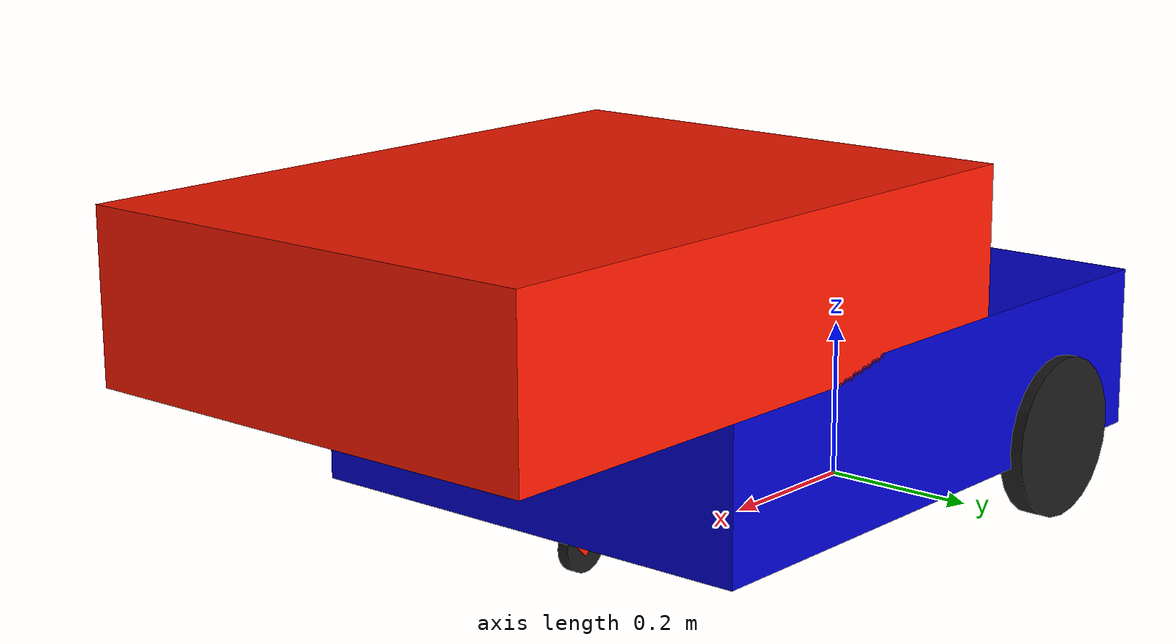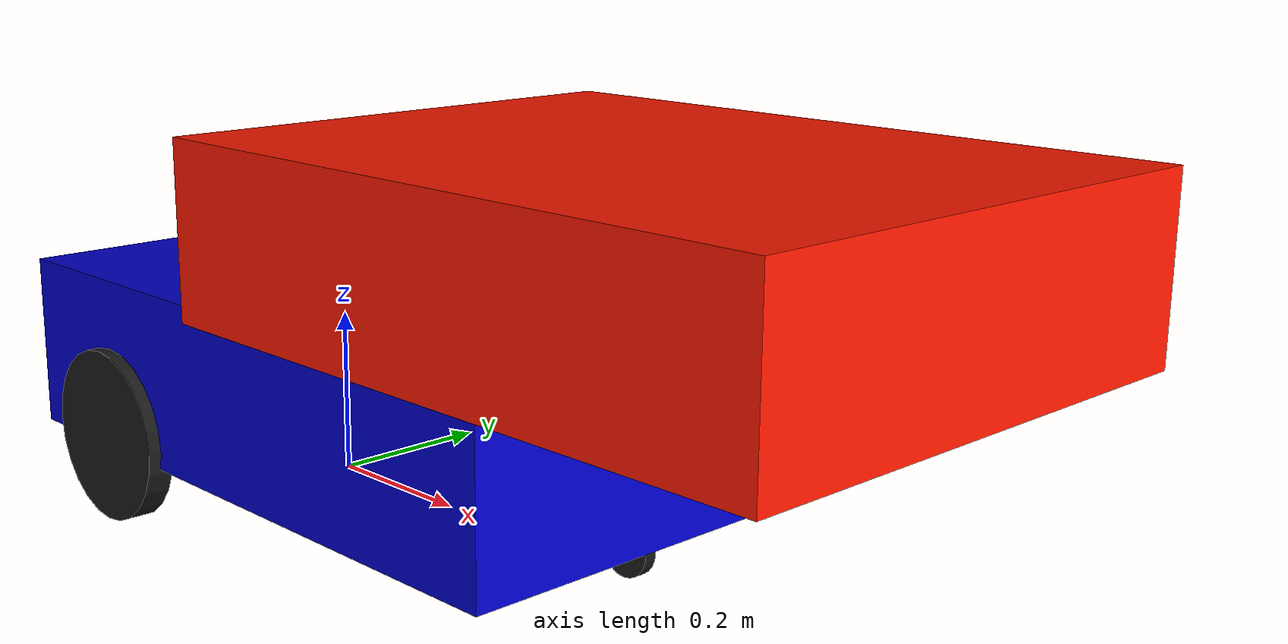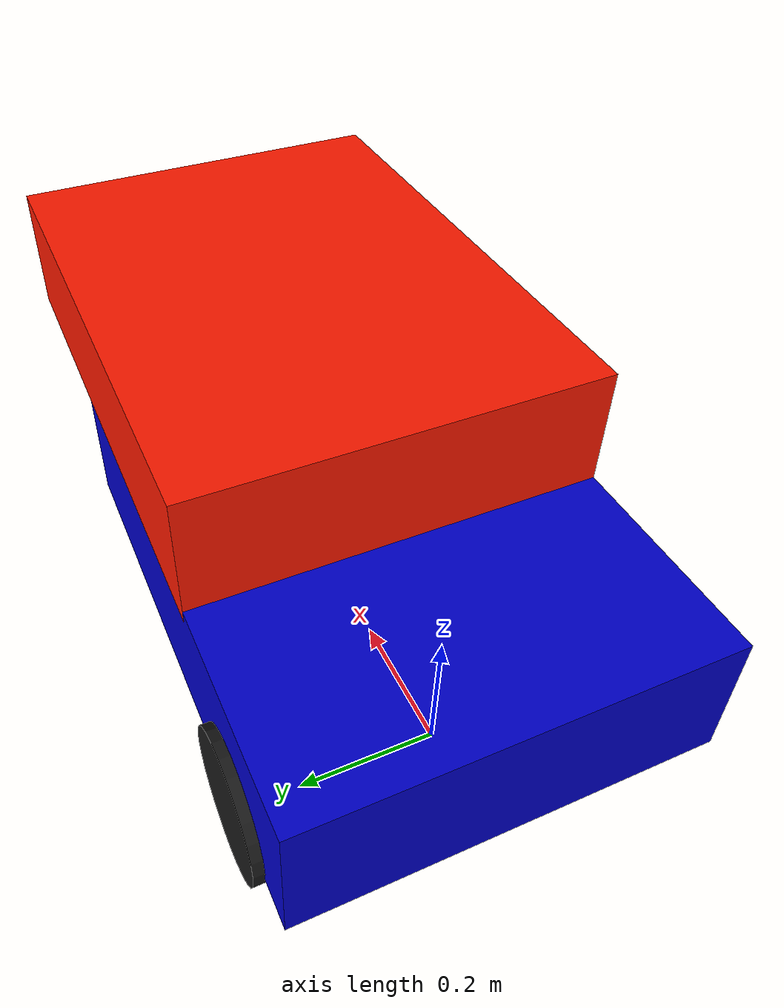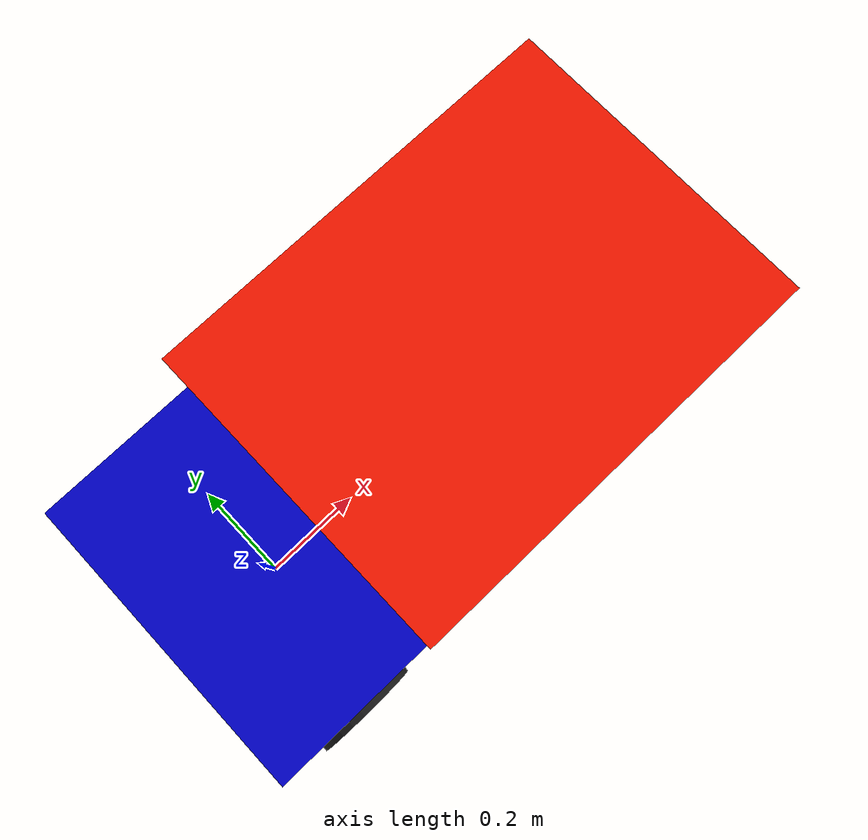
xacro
<?xml version="1.0"?>

<!-- Robot name -->
<robot name="ddsr" xmlns:xacro="http://ros.org/wiki/xacro">
<xacro:arg name="namespace" default="ddsr" />

<!-- user input dimensions  ( DEBUG: all mass values have been divided by 100 )  -->
<xacro:property name="robot" value="ddsr" />
<xacro:property name="base_length" value="0.8" />
<xacro:property name="base_width" value="0.6" />
<xacro:property name="base_height" value="0.2" />
<xacro:property name="base_mass" value="300.0" />
<xacro:property name="floor_clearance" value="0.08" />
<xacro:property name="wheel_baseline" value="0.6" />
<xacro:property name="wheel_width" value="0.03" />
<xacro:property name="wheel_radius" value="0.1" />
<xacro:property name="wheel_mass" value="5.0" />
<xacro:property name="cwheel_width" value="0.02" />
<xacro:property name="cwheel_radius" value="0.05" />
<xacro:property name="cwheel_mass" value="1" />

<!-- materials -->
<material name="ddsr/blue">
	<color rgba="0 0 0.8 1"/>
</material>
<material name="ddsr/red">
	<color rgba="1 0.1 0.0 1"/>
</material>
<material name="ddsr/grey">
	<color rgba="0.1 0.1 0.1 1"/>
</material>
<material name="ddsr/white">
	<color rgba="1 1 1 1"/>
</material>

<!-- Extra definitions for gazebo simulation  -->
<xacro:include filename="$(find ddsr_gazebo)/gazebo/ddsr.gazebo" />
<xacro:gazebo_include gazebo_namespace="$(arg namespace)" />

<!-- ~~~~~~~~~~~~~~~~~~~~~~~ PLATFORM ~~~~~~~~~~~~~~~~~~~~~~~~~~~~~~~~~~~~~~~~ -->

<link name="footprint">
	<visual>
		<origin xyz="0 0 0" rpy="0 0 0"/>
		<geometry>
			<box size="0.01 0.01 0.01"/>
		</geometry>
		<material name="ddsr/white"/>
	</visual>
</link>

<!-- Base Link. STL is scaled with te ratio between NEW/OLD dimensions -->
<joint name="$footprint_2_lidar" type="fixed" >
	<parent link="platform"/>
	<child link="lidar"/>
	<origin xyz="${base_length*0.4} 0 ${floor_clearance+base_height*0.5}" rpy="0 0 0"/>
</joint>
<link name="lidar">
	<visual>
		<origin xyz="0 0 0" rpy="0 0 0"/>
		<geometry>
			<box size="${base_length} ${base_width} ${base_height}"/>
		</geometry>
		<material name="ddsr/red" />
	</visual>
	<collision>
		<origin xyz="0 0 0" rpy="0 0 0"/>
		<geometry>
			<box size="0.1 0.1 0.1"/>
		</geometry>
	</collision>
	<inertial>
		<mass value="${base_mass}" />
		<origin xyz="0 0 0" rpy="0 0 0"/>
		<inertia ixx="${0.083*1*(base_width*base_width+base_height*base_height)}"
			ixy="0.0"
			ixz="0.0"
			iyy="${0.083*1*(base_length*base_length+base_height*base_height)}"
			iyz="0.0"
			izz="${0.083*1*(base_length*base_length+base_width*base_width)}" />
	</inertial>
</link>

<joint name="$footprint_2_platform" type="fixed" >
	<parent link="footprint"/>
	<child link="platform"/>
	<origin xyz="${base_length*0.25} 0 ${floor_clearance+base_height*0.5}" rpy="0 0 0"/>
</joint>
<link name="platform">
	<visual>
		<origin xyz="0 0 0" rpy="0 0 0"/>
		<geometry>
			<box size="${base_length} ${base_width} ${base_height}"/>
		</geometry>
		<material name="ddsr/blue" />
	</visual>
	<collision>
		<origin xyz="0 0 0" rpy="0 0 0"/>
		<geometry>
			<box size="${base_length} ${base_width} ${base_height}"/>
		</geometry>
	</collision>
	<inertial>
		<mass value="${base_mass}" />
		<origin xyz="0 0 0" rpy="0 0 0"/>
		<inertia ixx="${0.083*base_mass*(base_width*base_width+base_height*base_height)}"
			ixy="0.0"
			ixz="0.0"
			iyy="${0.083*base_mass*(base_length*base_length+base_height*base_height)}"
			iyz="0.0"
			izz="${0.083*base_mass*(base_length*base_length+base_width*base_width)}" />
	</inertial>
</link>

<!-- ~~~~~~~~~~~~~~~~~~~~~~~ DRIVE WHEELS ~~~~~~~~~~~~~~~~~~~~~~~~~~~~~~~~~~~~~~~~ -->

<joint name="platform_2_left_wheel" type="continuous" >
	<parent link="platform"/>
	<child link="left_wheel"/>
	<origin xyz="${-base_length*0.3} ${base_width*0.5} ${-base_height*0.5+wheel_radius-floor_clearance}" rpy="${-0.5*pi} 0 0"/>
	<axis xyz="0 0 1"/>
	<limit effort="99999" velocity="${20*pi}"/>
	<dynamics friction="0.25" damping="0.05"/>
</joint>
<link name="left_wheel">
	<visual>
		<origin xyz="0 0 0" rpy="0 0 0"/>
		<geometry>
			<cylinder length="${wheel_width}" radius="${wheel_radius}"/>
		</geometry>
		<material name="ddsr/grey" />
	</visual>
	<collision>
		<origin xyz="0 0 0" rpy="0 0 0"/>
		<geometry>
			<cylinder length="${wheel_width}" radius="${wheel_radius}"/>
		</geometry>
	</collision>
	<inertial>
		<mass value="${wheel_mass}" />
		<origin xyz="0 0 0" rpy="0 0 0"/>
		<inertia ixx="${0.083*wheel_mass*(3*wheel_radius*wheel_radius+wheel_width*wheel_width)}"
			ixy="0.0"
			ixz="0.0"
			iyy="${0.083*wheel_mass*(3*wheel_radius*wheel_radius+wheel_width*wheel_width)}"
			iyz="0.0"
			izz="${0.5*wheel_mass*wheel_radius*wheel_radius}" />
	</inertial>
</link>

<joint name="platform_2_right_wheel" type="continuous" >
	<parent link="platform"/>
	<child link="right_wheel"/>
	<origin xyz="${-base_length*0.3} ${-base_width*0.5} ${-base_height*0.5+wheel_radius-floor_clearance}" rpy="${-0.5*pi} 0 0"/>
	<axis xyz="0 0 1"/>
	<limit effort="99999" velocity="${20*pi}"/>
	<dynamics friction="0.25" damping="0.05"/>
</joint>
<link name="right_wheel">
	<visual>
		<origin xyz="0 0 0" rpy="0 0 0"/>
		<geometry>
			<cylinder length="${wheel_width}" radius="${wheel_radius}"/>
		</geometry>
		<material name="ddsr/grey" />
	</visual>
	<collision>
		<origin xyz="0 0 0" rpy="0 0 0"/>
		<geometry>
			<cylinder length="${wheel_width}" radius="${wheel_radius}"/>
		</geometry>
	</collision>
	<inertial>
		<mass value="${wheel_mass}" />
		<origin xyz="0 0 0" rpy="0 0 0"/>
		<inertia ixx="${0.083*wheel_mass*(3*wheel_radius*wheel_radius+wheel_width*wheel_width)}"
			ixy="0.0"
			ixz="0.0"
			iyy="${0.083*wheel_mass*(3*wheel_radius*wheel_radius+wheel_width*wheel_width)}"
			iyz="0.0"
			izz="${0.5*wheel_mass*wheel_radius*wheel_radius}" />
	</inertial>
</link>

<transmission name="$platform_2_left_wheel_transmission">
	<type>transmission_interface/SimpleTransmission</type>
	<joint name="platform_2_left_wheel">
		<hardwareInterface>hardware_interface/VelocityJointInterface</hardwareInterface>
	</joint>
	<actuator name="left_wheel_motor">
		<hardwareInterface>EffortJointInterface</hardwareInterface>
		<mechanicalReduction>30</mechanicalReduction>
	</actuator>
</transmission>
<transmission name="$platform_2_right_wheel_transmission">
	<type>transmission_interface/SimpleTransmission</type>
	<joint name="platform_2_right_wheel">
		<hardwareInterface>hardware_interface/VelocityJointInterface</hardwareInterface>
	</joint>
	<actuator name="right_wheel_motor">
		<hardwareInterface>EffortJointInterface</hardwareInterface>
		<mechanicalReduction>30</mechanicalReduction>
	</actuator>
</transmission>

<!-- ~~~~~~~~~~~~~~~~~~~~~~~ CASTER WHEEL ~~~~~~~~~~~~~~~~~~~~~~~~~~~~~~~~~~~~~~~~ -->

<joint name="platform_2_caster_hinge_1" type="continuous" >
	<parent link="platform"/>
	<child link="caster_hinge_1"/>
	<origin xyz="${base_length*0.4} 0 ${-base_height*0.5-0.01}" rpy="0 0 0"/>
	<axis xyz="0 0 1"/>
	<limit effort="100000." velocity="${2*pi}"/>
	<dynamics friction="0.1" damping="0.01"/>
</joint>
<link name="caster_hinge_1">
	<visual>
		<origin xyz="0 0 0" rpy="0 0 0"/>
		<geometry>
			<box size="0.02 0.02 0.02"/>
		</geometry>
		<material name="ddsr/red" />
	</visual>
	<collision>
		<origin xyz="0 0 0" rpy="0 0 0"/>
		<geometry>
			<box size="0.02 0.02 0.02"/>
		</geometry>
	</collision>
	<inertial>
		<mass value="1" />
		<origin xyz="0 0 0" rpy="0 0 0"/>
		<inertia ixx="${0.083*(0.02*0.02+0.02*0.02)}"
			ixy="0.0"
			ixz="0.0"
			iyy="${0.083*(0.02*0.02+0.02*0.02)}"
			iyz="0.0"
			izz="${0.083*(0.02*0.02+0.02*0.02)}" />
	</inertial>
</link>

<joint name="caster_hinge_1_2_caster_hinge_2" type="fixed" >
	<parent link="caster_hinge_1"/>
	<child link="caster_hinge_2"/>
	<origin xyz="${-0.04*0.707*0.5} 0 ${-0.01-0.04*0.707*0.5}" rpy="0 ${0.25*pi} 0"/>
</joint>
<link name="caster_hinge_2">
	<visual>
		<origin xyz="0 0 0" rpy="0 0 0"/>
		<geometry>
			<box size="0.02 0.02 0.04"/>
		</geometry>
		<material name="ddsr/red" />
	</visual>
	<collision>
		<origin xyz="0 0 0" rpy="0 0 0"/>
		<geometry>
			<box size="0.02 0.02 0.04"/>
		</geometry>
	</collision>
	<inertial>
		<mass value="1" />
		<origin xyz="0 0 0" rpy="0 0 0"/>
		<inertia ixx="${0.083*(0.02*0.02+0.04*0.04)}"
			ixy="0.0"
			ixz="0.0"
			iyy="${0.083*(0.02*0.02+0.04*0.04)}"
			iyz="0.0"
			izz="${0.083*(0.02*0.02+0.02*0.02)}" />
	</inertial>
</link>

<joint name="caster_hinge_2_2_caster_wheel" type="continuous" >
	<parent link="caster_hinge_2"/>
	<child link="caster_wheel"/>
	<origin xyz="0 0 ${-0.04*0.707*0.5}" rpy="-${0.5*pi} 0 0"/>
	<axis xyz="0 0 1"/>
	<limit effort="99999" velocity="${20*pi}"/>
	<dynamics friction="0.25" damping="0.05"/>
</joint>
<link name="caster_wheel">
	<visual>
		<origin xyz="0 0 0" rpy="0 0 0"/>
		<geometry>
			<cylinder length="${0.5*wheel_width}" radius="${floor_clearance-0.02-0.04*0.707}"/>
		</geometry>
		<material name="ddsr/grey" />
	</visual>
	<collision>
		<origin xyz="0 0 0" rpy="0 0 0"/>
		<geometry>
			<cylinder length="${0.5*wheel_width}" radius="${floor_clearance-0.02-0.04*0.707}"/>
		</geometry>
	</collision>
	<inertial>
		<mass value="${wheel_mass*0.5}" />
		<origin xyz="0 0 0" rpy="0 0 0"/>
		<inertia ixx="${0.083*wheel_mass*0.5*(3*wheel_radius*wheel_radius+wheel_width*wheel_width)}"
			ixy="0.0"
			ixz="0.0"
			iyy="${0.083*wheel_mass*0.5*(3*wheel_radius*wheel_radius+wheel_width*wheel_width)}"
			iyz="0.0"
			izz="${0.5*wheel_mass*0.5*wheel_radius*wheel_radius}" />
	</inertial>
</link>

<!-- caster steering free transmission -->
<transmission name="platform_2_caster_hinge_1_transmission">
	<type>transmission_interface/SimpleTransmission</type>
	<joint name="platform_2_caster_hinge_1">
		<hardwareInterface>hardware_interface/EffortJointInterface</hardwareInterface>
	</joint>
	<actuator name="platform_2_caster_hinge_1_steering">
		<mechanicalReduction>1</mechanicalReduction>
	</actuator>
</transmission>

<!-- caster drive free transmission -->
<transmission name="caster_hinge_2_2_caster_wheel_transmission">
	<type>transmission_interface/SimpleTransmission</type>
	<joint name="caster_hinge_2_2_caster_wheel">
		<hardwareInterface>hardware_interface/EffortJointInterface</hardwareInterface>
	</joint>
	<actuator name="caster_hinge_2_2_caster_driving">
		<mechanicalReduction>1</mechanicalReduction>
	</actuator>
</transmission>

</robot>
